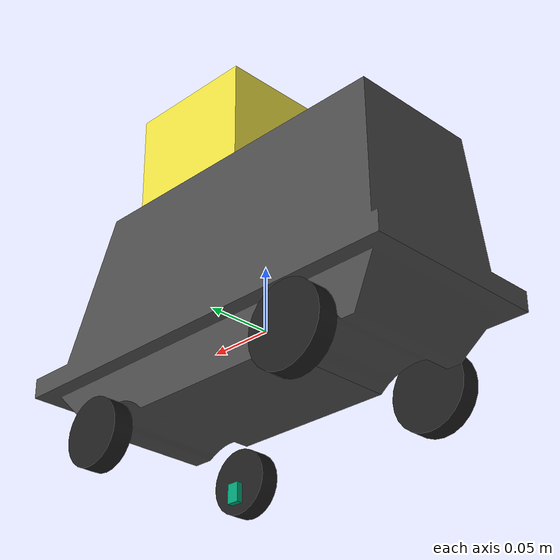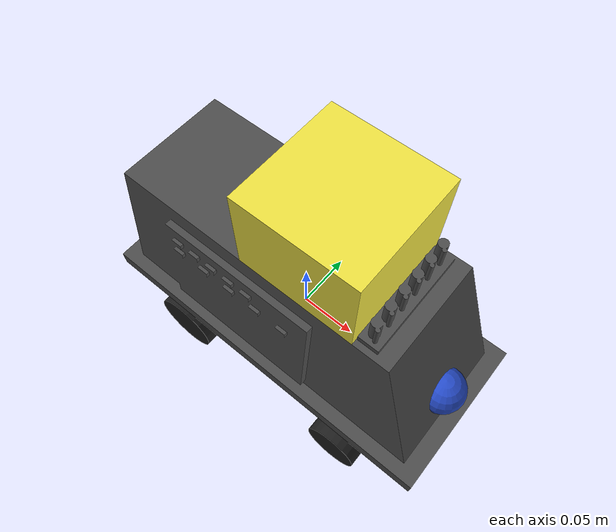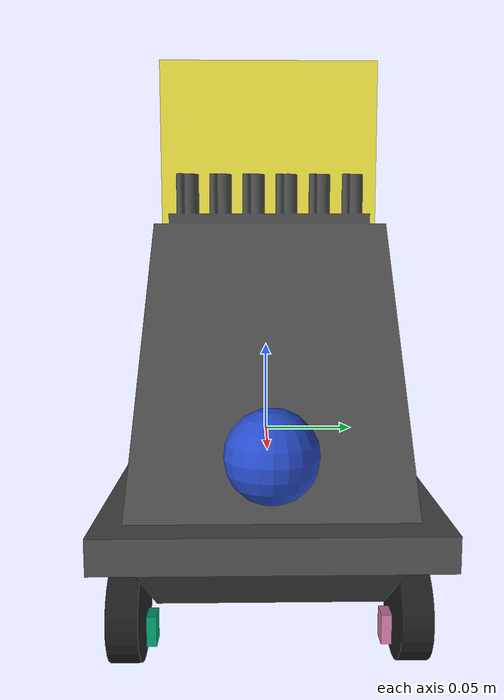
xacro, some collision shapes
<?xml version='1.0'?>

<robot name="my_robot" xmlns:xacro="http://www.ros.org/wiki/xacro">

    <xacro:include filename="$(find my_robot)/urdf/MSE6.gazebo" />

    <link name="robot_footprint"></link>

    <joint name="robot_footprint_joint" type="fixed">
        <origin xyz="0 0 0" rpy="0 0 0" />
        <parent link="robot_footprint"/>
	    <child link="chassis"/>
    </joint>

    <link name="chassis">
        <pose>0 0 0 0 0 0</pose>

        <inertial>
            <mass value="3.0"/>
            <origin xyz="0 0 .01" rpy="0 0 0"/>
            <inertia
                ixx="0.0067" ixy="0" ixz="0"
                iyy="0.0267" iyz="0"
                izz="0.025"
                />
        </inertial>

        <collision name="collision">
            <origin xyz="0 0 .01" rpy="0 0 0"/>
            <geometry>
               <box size=".30 .1 .13"/>
            </geometry>
        </collision>

        <visual name="chassis_visual">
            <origin xyz="0 0 -.05" rpy="0 0 0 "/>
            <geometry>
                <mesh filename="package://my_robot/meshes/MS6E.dae"/>
            </geometry>
        </visual>

    </link>

    <link name="front_right_strut">
        <collision>
            <origin xyz="0 0 0" rpy="0 0 0"/>
            <geometry>
                <box size="0.01 0.005 0.015"/>
            </geometry>
        </collision>

        <inertial>
            <origin xyz="0 0 0" rpy="0 0 0"/>
            <mass value="1e-5"/>
            <inertia
                ixx="1e-6" ixy="0" ixz="0"
                iyy="1e-6" iyz="0"
                izz="1e-6"
                />
        </inertial>

        <visual>
            <origin xyz="0 0 0" rpy="0 0 0"/>
            <geometry>
               <box size="0.01 0.005 0.015"/>
            </geometry>
        </visual>

    </link>

    <link name="front_right_wheel">

        <collision>
            <origin xyz="0 0 0" rpy="0 1.5707 1.5707"/>
            <geometry>
                <cylinder radius="0.025" length="0.015"/>
            </geometry>
        </collision>

        <inertial>
            <mass value=".1"/>
            <origin xyz="0 0 0" rpy="0 1.5707 1.5707"/>
            <inertia
            ixx="0.000018" ixy="0" ixz="0"
            iyy="0.000018" iyz="0"
            izz="0.000031"
            />
        </inertial>

        <visual>
            <origin xyz="0 0 0" rpy="0 1.5707 1.5707"/>
            <geometry>
                <cylinder radius="0.025" length="0.015"/>
            </geometry>
        </visual>

    </link>

    <link name="rear_right_strut">
        <collision>
            <origin xyz="0 0 0" rpy="0 0 0"/>
            <geometry>
                <box size="0.01 0.01 0.025"/>
            </geometry>
        </collision>

        <inertial>
            <origin xyz="0 0 0" rpy="0 0 0"/>
            <mass value="1e-5"/>
            <inertia
                ixx="1e-6" ixy="0" ixz="0"
                iyy="1e-6" iyz="0"
                izz="1e-6"
                />
        </inertial>

        <visual>
            <origin xyz="0 0 0" rpy="0 0 0"/>
            <geometry>
               <box size="0.01 0.01 0.025"/>
            </geometry>
        </visual>

    </link>

    <link name="rear_right_wheel">

        <collision>
            <origin xyz="0 0 0" rpy="0 1.5707 1.5707"/>
            <geometry>
                <cylinder radius="0.030" length="0.015"/>
            </geometry>
        </collision>

        <inertial>
            <mass value=".1"/>
            <origin xyz="0 0 0" rpy="0 1.5707 1.5707"/>
            <inertia
               ixx="0.000024" ixy="0" ixz="0"
               iyy="0.000024" iyz="0"
               izz="0.000045"
            />
        </inertial>

        <visual>
            <origin xyz="0 0 0" rpy="0 1.5707 1.5707"/>
            <geometry>
                <cylinder radius="0.030" length="0.015"/>
            </geometry>
        </visual>

    </link>

    <link name="front_left_strut">
        <collision>
            <origin xyz="0 0 0" rpy="0 0 0"/>
            <geometry>
                <box size="0.01 0.005 0.015"/>
            </geometry>
        </collision>

        <inertial>
            <origin xyz="0 0 0" rpy="0 0 0"/>
            <mass value="1e-5"/>
            <inertia
                ixx="1e-6" ixy="0" ixz="0"
                iyy="1e-6" iyz="0"
                izz="1e-6"
                />
        </inertial>

        <visual>
            <origin xyz="0 0 0" rpy="0 0 0"/>
            <geometry>
               <box size="0.01 0.005 0.015"/>
            </geometry>
        </visual>

    </link>

    <link name="front_left_wheel">

        <collision>
            <origin xyz="0 0 0" rpy="0 1.5707 1.5707"/>
            <geometry>
                <cylinder radius="0.025" length="0.015"/>
            </geometry>
        </collision>

        <inertial>
            <mass value=".1"/>
            <origin xyz="0 0 0" rpy="0 1.5707 1.5707"/>
            <inertia
               ixx="0.000018" ixy="0" ixz="0"
               iyy="0.000018" iyz="0"
               izz="0.000031"
            />
        </inertial>

        <visual>
            <origin xyz="0 0 0" rpy="0 1.5707 1.5707"/>
            <geometry>
                <cylinder radius="0.025" length="0.015"/>
            </geometry>
        </visual>

     </link>

    <link name="rear_left_strut">
        <collision>
            <origin xyz="0 0 0" rpy="0 0 0"/>
            <geometry>
                <box size="0.01 0.01 0.025"/>
            </geometry>
        </collision>

        <inertial>
            <origin xyz="0 0 0" rpy="0 0 0"/>
            <mass value="1e-5"/>
            <inertia
                ixx="1e-6" ixy="0" ixz="0"
                iyy="1e-6" iyz="0"
                izz="1e-6"
                />
        </inertial>

        <visual>
            <origin xyz="0 0 0" rpy="0 0 0"/>
            <geometry>
               <box size="0.01 0.01 0.025"/>
            </geometry>
        </visual>

    </link>

    <link name="rear_left_wheel">
        <collision>
            <origin xyz="0 0 0" rpy="0 1.5707 1.5707"/>
            <geometry>
                <cylinder radius="0.030" length="0.015"/>
            </geometry>
        </collision>

        <inertial>
            <mass value=".1"/>
            <origin xyz="0 0 0" rpy="0 1.5707 1.5707"/>
            <inertia
               ixx="0.000024" ixy="0" ixz="0"
               iyy="0.000024" iyz="0"
               izz="0.000045"
            />
        </inertial>

        <visual>
            <origin xyz="0 0 0" rpy="0 1.5707 1.5707"/>
            <geometry>
                <cylinder radius="0.030" length="0.015"/>
            </geometry>
        </visual>

    </link>
        <gazebo reference="front_left_wheel">
            <material>Gazebo/Black</material>
        </gazebo>

        <gazebo reference="front_right_wheel">
            <material>Gazebo/Black</material>
        </gazebo>

        <gazebo reference="rear_left_wheel">
            <material>Gazebo/Black</material>
        </gazebo>

        <gazebo reference="rear_right_wheel">
            <material>Gazebo/Black</material>
        </gazebo>

        <gazebo reference="chassis">
            <material>Gazebo/Road</material>
        </gazebo>

        <gazebo reference="camera">
            <material>Gazebo/Blue</material>
        </gazebo>

    <joint name="front_left_steer_bearing" type="revolute">
        <origin xyz="0.09 0.057 -.079" rpy="0 0 0"/>
        <child link="front_left_strut"/>
        <parent link="chassis"/>
        <axis xyz="0 0 1" rpy="0 0 0"/>
        <limit effort="50" velocity="1.0" lower="-0.3" upper="0.3"/>
    </joint>

    <joint name="front_left_wheel_bearing" type="continuous">
        <origin xyz="0 .011 0.01" rpy="0 0 0"/>
        <child link="front_left_wheel"/>
        <parent link="front_left_strut"/>
        <axis xyz="0 1 0" rpy="0 0 0"/>
        <limit effort="100" velocity="100"/>
    </joint>

    <joint name="front_right_steer_bearing" type="revolute">
        <origin xyz="0.09 -0.057 -.079" rpy="0 0 0"/>
        <child link="front_right_strut"/>
        <parent link="chassis"/>
        <axis xyz="0 0 1" rpy="0 0 0"/>
        <limit effort="50" velocity="1.0" lower="-0.3" upper="0.3"/>
    </joint>

    <joint name="front_right_wheel_bearing" type="continuous">
        <origin xyz="0 -.011 0.01" rpy="0 0 0"/>
        <child link="front_right_wheel"/>
        <parent link="front_right_strut"/>
        <axis xyz="0 1 0" rpy="0 0 0"/>
        <limit effort="100" velocity="100"/>
    </joint>

    <joint name="rear_left_steer_bearing" type="fixed">
        <origin xyz="-0.09 0.067 -.053" rpy="0 0 0"/>
        <child link="rear_left_strut"/>
        <parent link="chassis"/>
        <axis xyz="0 0 1" rpy="0 0 0"/>
        <limit effort="100" velocity="100"/>
        <dynamics damping=".0" friction=".00"/>
    </joint>

    <joint name="rear_left_wheel_bearing" type="continuous">
        <origin xyz="0 0 0" rpy="0 0 0"/>
        <child link="rear_left_wheel"/>
        <parent link="rear_left_strut"/>
        <axis xyz="0 1 0" rpy="0 0 0"/>
        <limit effort="100" velocity="100"/>
        <dynamics damping=".0" friction=".00"/>
    </joint>

    <joint name="rear_right_steer_bearing" type="fixed">
        <origin xyz="-0.09 -0.067 -.053" rpy="0 0 0"/>
        <child link="rear_right_strut"/>
        <parent link="chassis"/>
        <axis xyz="0 0 1" rpy="0 0 0"/>
        <limit effort="100" velocity="100"/>
        <dynamics damping=".0" friction=".00"/>
    </joint>

    <joint name="rear_right_wheel_bearing" type="continuous">
        <origin xyz="0 0 0" rpy="0 0 0"/>
        <child link="rear_right_wheel"/>
        <parent link="rear_right_strut"/>
        <axis xyz="0 1 0" rpy="0 0 0"/>
        <limit effort="100" velocity="100"/>
        <dynamics damping=".0" friction=".00"/>
    </joint>

    <link name="camera">
        <collision>
            <origin xyz="0 0 0" rpy="0 0 0"/>
            <geometry>
                <sphere radius="0.02"/>
            </geometry>
        </collision>

        <inertial>
            <origin xyz="0 0 0" rpy="0 0 0"/>
            <mass value="0.1"/>
            <inertia
                ixx="1e-6" ixy="0" ixz="0"
                iyy="1e-6" iyz="0"
                izz="1e-6"
                />
        </inertial>

        <visual>
            <origin xyz="0 0 0" rpy="0 0 0"/>
            <geometry>
                <sphere radius="0.02"/>
            </geometry>
        </visual>

    </link>

    <joint name="camera_joint" type="fixed">
        <origin xyz="0.14 0 0.02" rpy="0 0 0"/>
        <parent link="chassis"/>
        <child link="camera"/>
        <axis xyz="0 1 0"/>
    </joint>

    <link name="hokuyo">
        <collision>
            <origin xyz="0 0 0" rpy="0 0 0"/>
            <geometry>
                <box size="0.1 0.1 0.1"/>
            </geometry>
        </collision>

        <inertial>
            <origin xyz="0 0 0" rpy="0 0 0"/>
            <mass value="1e-5"/>
            <inertia
                ixx="1e-6" ixy="0" ixz="0"
                iyy="1e-6" iyz="0"
                izz="1e-6"
                />
        </inertial>

        <visual>
            <origin xyz="0 0 0" rpy="0 0 0"/>
            <geometry>
                <mesh filename="package://my_robot/meshes/hokuyo.dae"/>
            </geometry>
        </visual>

    </link>

    <joint name="hokuyo_joint" type="fixed">
        <origin xyz="0.03 0 .14" rpy="0 0 0"/>
        <axis xyz="0 1 0"/>
        <parent link="chassis"/>
        <child link="hokuyo"/>
    </joint>

</robot>
